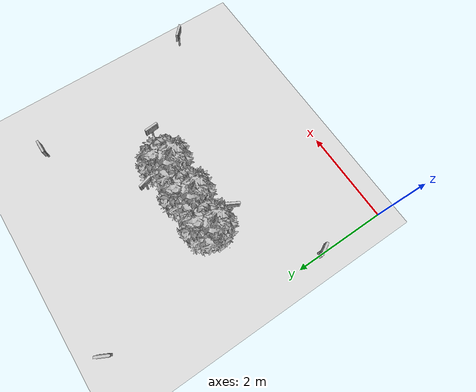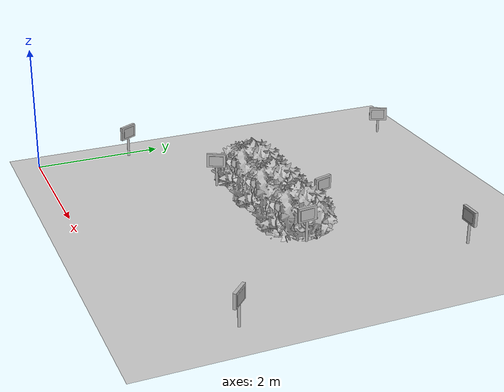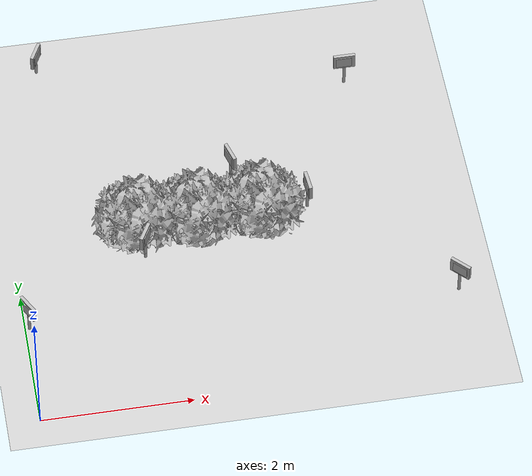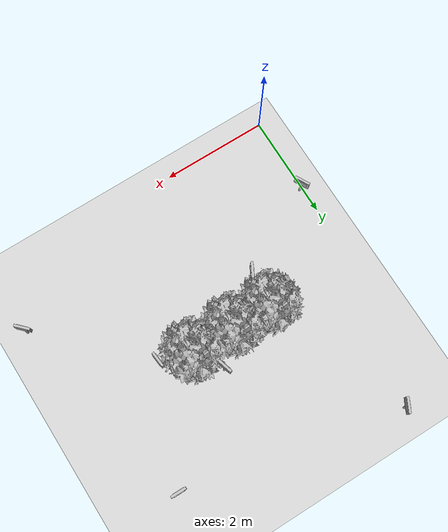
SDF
<sdf version="1.7">
 <world name="default">
  <model name="ground_plane">
   <static>1</static>
   <link name="link">
    <collision name="collision">
     <geometry><plane><normal>0 0 1</normal><size>100 100</size></plane></geometry>
     <surface><friction><ode><mu>100</mu><mu2>50</mu2></ode></friction></surface>
    </collision>
    <visual name="visual">
     <cast_shadows>0</cast_shadows>
     <geometry><plane><normal>0 0 1</normal><size>100 100</size></plane></geometry>
     <material>
      <script><uri>file://media/materials/scripts/gazebo.material</uri><name>Gazebo/Grey</name></script>
     </material>
    </visual>
   </link>
  </model>
  <model name="abbfre_8">
   <link name="link_0">
    <inertial>
     <mass>1</mass>
     <inertia>
      <ixx>0.166667</ixx>
      <ixy>0</ixy>
      <ixz>0</ixz>
      <iyy>0.166667</iyy>
      <iyz>0</iyz>
      <izz>0.166667</izz>
     </inertia>
    </inertial>
    <pose>0 0 -0 1.60917 -0 0</pose>
    <visual name="visual">
     <geometry><mesh><uri>model://abbfre/meshes/arbufres.obj</uri><scale>1 1 1</scale></mesh></geometry>
    </visual>
    <collision name="collision">
     <geometry><mesh><uri>model://abbfre/meshes/arbufres.obj</uri><scale>1 1 1</scale></mesh></geometry>
     <surface>
      <friction>
       <ode><mu>1</mu><mu2>1</mu2><fdir1>0 0 0</fdir1><slip1>0</slip1><slip2>0</slip2></ode>
       <torsional>
        <coefficient>1</coefficient>
        <patch_radius>0</patch_radius>
        <surface_radius>0</surface_radius>
        <use_patch_radius>1</use_patch_radius>
        <ode><slip>0</slip></ode>
       </torsional>
      </friction>
      <bounce><restitution_coefficient>0</restitution_coefficient><threshold>1e+06</threshold></bounce>
      <contact>
       <collide_without_contact>0</collide_without_contact>
       <collide_without_contact_bitmask>1</collide_without_contact_bitmask>
       <collide_bitmask>1</collide_bitmask>
       <ode>
        <soft_cfm>0</soft_cfm>
        <soft_erp>0.2</soft_erp>
        <kp>1e+13</kp>
        <kd>1</kd>
        <max_vel>0.01</max_vel>
        <min_depth>0</min_depth>
       </ode>
       <bullet>
        <split_impulse>1</split_impulse>
        <split_impulse_penetration_threshold>-0.01</split_impulse_penetration_threshold>
        <soft_cfm>0</soft_cfm>
        <soft_erp>0.2</soft_erp>
        <kp>1e+13</kp>
        <kd>1</kd>
       </bullet>
      </contact>
     </surface>
    </collision>
   </link>
   <static>1</static>
   <pose>2.54008 3.13594 0 0 -0 0</pose>
  </model>
  <model name="letrero_riego_2">
   <link name="link_0">
    <inertial>
     <mass>0.0543151</mass>
     <inertia>
      <ixx>4.90351e-06</ixx>
      <ixy>0</ixy>
      <ixz>0</ixz>
      <iyy>4.90351e-06</iyy>
      <iyz>0</iyz>
      <izz>1.12837e-07</izz>
     </inertia>
    </inertial>
    <pose>0.002515 0.005109 0.153562 0 -0 0</pose>
    <visual name="visual">
     <geometry><cylinder><radius>0.0203836</radius><length>0.327243</length></cylinder></geometry>
     <material>
      <lighting>1</lighting>
      <script>
       <uri>model://letrero_riego/madera/scripts</uri>
       <uri>model://letrero_riego/madera/textures</uri>
       <name>textur/madera</name>
      </script>
      <shader type="pixel"/>
      <emissive>0 0 0 1</emissive>
     </material>
    </visual>
    <collision name="collision">
     <geometry><cylinder><radius>0.020384</radius><length>0.327243</length></cylinder></geometry>
     <surface>
      <friction>
       <ode><mu>1</mu><mu2>1</mu2><fdir1>0 0 0</fdir1><slip1>0</slip1><slip2>0</slip2></ode>
       <torsional>
        <coefficient>1</coefficient>
        <patch_radius>0</patch_radius>
        <surface_radius>0</surface_radius>
        <use_patch_radius>1</use_patch_radius>
        <ode><slip>0</slip></ode>
       </torsional>
      </friction>
      <bounce><restitution_coefficient>0</restitution_coefficient><threshold>1e+06</threshold></bounce>
      <contact>
       <collide_without_contact>0</collide_without_contact>
       <collide_without_contact_bitmask>1</collide_without_contact_bitmask>
       <collide_bitmask>1</collide_bitmask>
       <ode>
        <soft_cfm>0</soft_cfm>
        <soft_erp>0.2</soft_erp>
        <kp>1e+13</kp>
        <kd>1</kd>
        <max_vel>0.01</max_vel>
        <min_depth>0</min_depth>
       </ode>
       <bullet>
        <split_impulse>1</split_impulse>
        <split_impulse_penetration_threshold>-0.01</split_impulse_penetration_threshold>
        <soft_cfm>0</soft_cfm>
        <soft_erp>0.2</soft_erp>
        <kp>1e+13</kp>
        <kd>1</kd>
       </bullet>
      </contact>
     </surface>
    </collision>
   </link>
   <link name="link_1">
    <inertial>
     <mass>0.00299633</mass>
     <inertia>
      <ixx>1.27855e-05</ixx>
      <ixy>0</ixy>
      <ixz>0</ixz>
      <iyy>3.42923e-05</iyy>
      <iyz>0</iyz>
      <izz>2.25402e-05</izz>
     </inertia>
    </inertial>
    <pose>-0.001542 0.002452 0.422031 0 -0 0</pose>
    <visual name="visual">
     <geometry><box><size>0.296988 0.04549 0.221665</size></box></geometry>
     <material>
      <lighting>1</lighting>
      <script>
       <uri>model://letrero_riego/madera/scripts</uri>
       <uri>model://letrero_riego/madera/textures</uri>
       <name>textur/madera</name>
      </script>
      <shader type="pixel"/>
      <emissive>0 0 0 1</emissive>
     </material>
    </visual>
    <collision name="collision">
     <geometry><box><size>0.296988 0.04549 0.221665</size></box></geometry>
     <surface>
      <friction>
       <ode><mu>1</mu><mu2>1</mu2><fdir1>0 0 0</fdir1><slip1>0</slip1><slip2>0</slip2></ode>
       <torsional>
        <coefficient>1</coefficient>
        <patch_radius>0</patch_radius>
        <surface_radius>0</surface_radius>
        <use_patch_radius>1</use_patch_radius>
        <ode><slip>0</slip></ode>
       </torsional>
      </friction>
      <bounce><restitution_coefficient>0</restitution_coefficient><threshold>1e+06</threshold></bounce>
      <contact>
       <collide_without_contact>0</collide_without_contact>
       <collide_without_contact_bitmask>1</collide_without_contact_bitmask>
       <collide_bitmask>1</collide_bitmask>
       <ode>
        <soft_cfm>0</soft_cfm>
        <soft_erp>0.2</soft_erp>
        <kp>1e+13</kp>
        <kd>1</kd>
        <max_vel>0.01</max_vel>
        <min_depth>0</min_depth>
       </ode>
       <bullet>
        <split_impulse>1</split_impulse>
        <split_impulse_penetration_threshold>-0.01</split_impulse_penetration_threshold>
        <soft_cfm>0</soft_cfm>
        <soft_erp>0.2</soft_erp>
        <kp>1e+13</kp>
        <kd>1</kd>
       </bullet>
      </contact>
     </surface>
    </collision>
   </link>
   <link name="link_2">
    <inertial>
     <mass>0.00173577</mass>
     <inertia>
      <ixx>4.23206e-06</ixx>
      <ixy>0</ixy>
      <ixz>0</ixz>
      <iyy>1.03921e-05</iyy>
      <iyz>0</iyz>
      <izz>7.37287e-06</izz>
     </inertia>
    </inertial>
    <pose>-0.010225 0.002657 0.421501 0 -0 0</pose>
    <visual name="visual">
     <geometry><box><size>0.216284 0.064749 0.15832</size></box></geometry>
     <material>
      <lighting>1</lighting>
      <script>
       <uri>model://letrero_riego/materials/scripts</uri>
       <uri>model://letrero_riego/materials/textures</uri>
       <name>textur/riego</name>
      </script>
      <shader type="pixel"/>
      <emissive>0 0 0 1</emissive>
     </material>
    </visual>
    <collision name="collision">
     <geometry><box><size>0.216284 0.064749 0.15832</size></box></geometry>
     <surface>
      <friction>
       <ode><mu>1</mu><mu2>1</mu2><fdir1>0 0 0</fdir1><slip1>0</slip1><slip2>0</slip2></ode>
       <torsional>
        <coefficient>1</coefficient>
        <patch_radius>0</patch_radius>
        <surface_radius>0</surface_radius>
        <use_patch_radius>1</use_patch_radius>
        <ode><slip>0</slip></ode>
       </torsional>
      </friction>
      <bounce><restitution_coefficient>0</restitution_coefficient><threshold>1e+06</threshold></bounce>
      <contact>
       <collide_without_contact>0</collide_without_contact>
       <collide_without_contact_bitmask>1</collide_without_contact_bitmask>
       <collide_bitmask>1</collide_bitmask>
       <ode>
        <soft_cfm>0</soft_cfm>
        <soft_erp>0.2</soft_erp>
        <kp>1e+13</kp>
        <kd>1</kd>
        <max_vel>0.01</max_vel>
        <min_depth>0</min_depth>
       </ode>
       <bullet>
        <split_impulse>1</split_impulse>
        <split_impulse_penetration_threshold>-0.01</split_impulse_penetration_threshold>
        <soft_cfm>0</soft_cfm>
        <soft_erp>0.2</soft_erp>
        <kp>1e+13</kp>
        <kd>1</kd>
       </bullet>
      </contact>
     </surface>
    </collision>
   </link>
   <joint name="link_0_JOINT_1" type="fixed">
    <parent>link_0</parent>
    <child>link_1</child>
    <physics>
     <ode><limit><cfm>0</cfm><erp>0.2</erp></limit><suspension><cfm>0</cfm><erp>0.2</erp></suspension></ode>
    </physics>
   </joint>
   <joint name="link_0_JOINT_2" type="fixed">
    <parent>link_0</parent>
    <child>link_2</child>
    <physics>
     <ode><limit><cfm>0</cfm><erp>0.2</erp></limit><suspension><cfm>0</cfm><erp>0.2</erp></suspension></ode>
    </physics>
   </joint>
   <static>1</static>
   <pose>5.69569 1.18445 0.061424 0 -0 2.34456</pose>
  </model>
  <model name="letrero_fresa_5">
   <link name="link_0">
    <inertial>
     <mass>0.00543151</mass>
     <inertia>
      <ixx>4.90351e-06</ixx>
      <ixy>0</ixy>
      <ixz>0</ixz>
      <iyy>4.90351e-06</iyy>
      <iyz>0</iyz>
      <izz>1.12837e-07</izz>
     </inertia>
    </inertial>
    <pose>0.002372 -0.000902 -0.178803 0 -0 0</pose>
    <visual name="visual">
     <geometry><cylinder><radius>0.0203836</radius><length>0.327243</length></cylinder></geometry>
     <material>
      <lighting>1</lighting>
      <script>
       <uri>model://letrero_fresa/madera/scripts</uri>
       <uri>model://letrero_fresa/madera/textures</uri>
       <name>textur/madera</name>
      </script>
      <shader type="pixel"/>
      <emissive>0 0 0 1</emissive>
     </material>
    </visual>
    <collision name="collision">
     <geometry><cylinder><radius>0.020384</radius><length>0.327243</length></cylinder></geometry>
     <surface>
      <friction>
       <ode><mu>1</mu><mu2>1</mu2><fdir1>0 0 0</fdir1><slip1>0</slip1><slip2>0</slip2></ode>
       <torsional>
        <coefficient>1</coefficient>
        <patch_radius>0</patch_radius>
        <surface_radius>0</surface_radius>
        <use_patch_radius>1</use_patch_radius>
        <ode><slip>0</slip></ode>
       </torsional>
      </friction>
      <bounce><restitution_coefficient>0</restitution_coefficient><threshold>1e+06</threshold></bounce>
      <contact>
       <collide_without_contact>0</collide_without_contact>
       <collide_without_contact_bitmask>1</collide_without_contact_bitmask>
       <collide_bitmask>1</collide_bitmask>
       <ode>
        <soft_cfm>0</soft_cfm>
        <soft_erp>0.2</soft_erp>
        <kp>1e+13</kp>
        <kd>1</kd>
        <max_vel>0.01</max_vel>
        <min_depth>0</min_depth>
       </ode>
       <bullet>
        <split_impulse>1</split_impulse>
        <split_impulse_penetration_threshold>-0.01</split_impulse_penetration_threshold>
        <soft_cfm>0</soft_cfm>
        <soft_erp>0.2</soft_erp>
        <kp>1e+13</kp>
        <kd>1</kd>
       </bullet>
      </contact>
     </surface>
    </collision>
   </link>
   <link name="link_1">
    <inertial>
     <mass>0.00299633</mass>
     <inertia>
      <ixx>1.27855e-05</ixx>
      <ixy>0</ixy>
      <ixz>0</ixz>
      <iyy>3.42923e-05</iyy>
      <iyz>0</iyz>
      <izz>2.25402e-05</izz>
     </inertia>
    </inertial>
    <pose>-0.001685 -0.003559 0.089666 0 -0 0</pose>
    <visual name="visual">
     <geometry><box><size>0.296988 0.04549 0.221665</size></box></geometry>
     <material>
      <lighting>1</lighting>
      <script>
       <uri>model://letrero_fresa/madera/scripts</uri>
       <uri>model://letrero_fresa/madera/textures</uri>
       <name>textur/madera</name>
      </script>
      <shader type="pixel"/>
      <emissive>0 0 0 1</emissive>
     </material>
    </visual>
    <collision name="collision">
     <geometry><box><size>0.296988 0.04549 0.221665</size></box></geometry>
     <surface>
      <friction>
       <ode><mu>1</mu><mu2>1</mu2><fdir1>0 0 0</fdir1><slip1>0</slip1><slip2>0</slip2></ode>
       <torsional>
        <coefficient>1</coefficient>
        <patch_radius>0</patch_radius>
        <surface_radius>0</surface_radius>
        <use_patch_radius>1</use_patch_radius>
        <ode><slip>0</slip></ode>
       </torsional>
      </friction>
      <bounce><restitution_coefficient>0</restitution_coefficient><threshold>1e+06</threshold></bounce>
      <contact>
       <collide_without_contact>0</collide_without_contact>
       <collide_without_contact_bitmask>1</collide_without_contact_bitmask>
       <collide_bitmask>1</collide_bitmask>
       <ode>
        <soft_cfm>0</soft_cfm>
        <soft_erp>0.2</soft_erp>
        <kp>1e+13</kp>
        <kd>1</kd>
        <max_vel>0.01</max_vel>
        <min_depth>0</min_depth>
       </ode>
       <bullet>
        <split_impulse>1</split_impulse>
        <split_impulse_penetration_threshold>-0.01</split_impulse_penetration_threshold>
        <soft_cfm>0</soft_cfm>
        <soft_erp>0.2</soft_erp>
        <kp>1e+13</kp>
        <kd>1</kd>
       </bullet>
      </contact>
     </surface>
    </collision>
   </link>
   <link name="link_2">
    <inertial>
     <mass>0.00219695</mass>
     <inertia>
      <ixx>5.34209e-06</ixx>
      <ixy>0</ixy>
      <ixz>0</ixz>
      <iyy>1.31531e-05</iyy>
      <iyz>0</iyz>
      <izz>9.31738e-06</izz>
     </inertia>
    </inertial>
    <pose>-0.001275 -0.005928 0.089136 0 -0 0</pose>
    <visual name="visual">
     <geometry><box><size>0.216284 0.06414 0.15832</size></box></geometry>
     <material>
      <lighting>1</lighting>
      <script>
       <uri>model://letrero_fresa/materials/scripts</uri>
       <uri>model://letrero_fresa/materials/textures</uri>
       <name>textur/difre</name>
      </script>
      <shader type="pixel"/>
      <emissive>0 0 0 1</emissive>
     </material>
    </visual>
    <collision name="collision">
     <geometry><box><size>0.216284 0.06414 0.15832</size></box></geometry>
     <surface>
      <friction>
       <ode><mu>1</mu><mu2>1</mu2><fdir1>0 0 0</fdir1><slip1>0</slip1><slip2>0</slip2></ode>
       <torsional>
        <coefficient>1</coefficient>
        <patch_radius>0</patch_radius>
        <surface_radius>0</surface_radius>
        <use_patch_radius>1</use_patch_radius>
        <ode><slip>0</slip></ode>
       </torsional>
      </friction>
      <bounce><restitution_coefficient>0</restitution_coefficient><threshold>1e+06</threshold></bounce>
      <contact>
       <collide_without_contact>0</collide_without_contact>
       <collide_without_contact_bitmask>1</collide_without_contact_bitmask>
       <collide_bitmask>1</collide_bitmask>
       <ode>
        <soft_cfm>0</soft_cfm>
        <soft_erp>0.2</soft_erp>
        <kp>1e+13</kp>
        <kd>1</kd>
        <max_vel>0.01</max_vel>
        <min_depth>0</min_depth>
       </ode>
       <bullet>
        <split_impulse>1</split_impulse>
        <split_impulse_penetration_threshold>-0.01</split_impulse_penetration_threshold>
        <soft_cfm>0</soft_cfm>
        <soft_erp>0.2</soft_erp>
        <kp>1e+13</kp>
        <kd>1</kd>
       </bullet>
      </contact>
     </surface>
    </collision>
   </link>
   <joint name="link_0_JOINT_1" type="fixed">
    <parent>link_0</parent>
    <child>link_1</child>
    <physics>
     <ode><limit><cfm>0</cfm><erp>0.2</erp></limit><suspension><cfm>0</cfm><erp>0.2</erp></suspension></ode>
    </physics>
   </joint>
   <joint name="link_0_JOINT_2" type="fixed">
    <parent>link_0</parent>
    <child>link_2</child>
    <physics>
     <ode><limit><cfm>0</cfm><erp>0.2</erp></limit><suspension><cfm>0</cfm><erp>0.2</erp></suspension></ode>
    </physics>
   </joint>
   <static>1</static>
   <pose>0.058788 1.50536 0.323037 0 0 -1.07829</pose>
  </model>
  <model name="letrero_fresa_6">
   <link name="link_0">
    <inertial>
     <mass>0.00543151</mass>
     <inertia>
      <ixx>4.90351e-06</ixx>
      <ixy>0</ixy>
      <ixz>0</ixz>
      <iyy>4.90351e-06</iyy>
      <iyz>0</iyz>
      <izz>1.12837e-07</izz>
     </inertia>
    </inertial>
    <pose>0.002372 -0.000902 -0.178803 0 -0 0</pose>
    <visual name="visual">
     <geometry><cylinder><radius>0.0203836</radius><length>0.327243</length></cylinder></geometry>
     <material>
      <lighting>1</lighting>
      <script>
       <uri>model://letrero_fresa/madera/scripts</uri>
       <uri>model://letrero_fresa/madera/textures</uri>
       <name>textur/madera</name>
      </script>
      <shader type="pixel"/>
      <emissive>0 0 0 1</emissive>
     </material>
    </visual>
    <collision name="collision">
     <geometry><cylinder><radius>0.020384</radius><length>0.327243</length></cylinder></geometry>
     <surface>
      <friction>
       <ode><mu>1</mu><mu2>1</mu2><fdir1>0 0 0</fdir1><slip1>0</slip1><slip2>0</slip2></ode>
       <torsional>
        <coefficient>1</coefficient>
        <patch_radius>0</patch_radius>
        <surface_radius>0</surface_radius>
        <use_patch_radius>1</use_patch_radius>
        <ode><slip>0</slip></ode>
       </torsional>
      </friction>
      <bounce><restitution_coefficient>0</restitution_coefficient><threshold>1e+06</threshold></bounce>
      <contact>
       <collide_without_contact>0</collide_without_contact>
       <collide_without_contact_bitmask>1</collide_without_contact_bitmask>
       <collide_bitmask>1</collide_bitmask>
       <ode>
        <soft_cfm>0</soft_cfm>
        <soft_erp>0.2</soft_erp>
        <kp>1e+13</kp>
        <kd>1</kd>
        <max_vel>0.01</max_vel>
        <min_depth>0</min_depth>
       </ode>
       <bullet>
        <split_impulse>1</split_impulse>
        <split_impulse_penetration_threshold>-0.01</split_impulse_penetration_threshold>
        <soft_cfm>0</soft_cfm>
        <soft_erp>0.2</soft_erp>
        <kp>1e+13</kp>
        <kd>1</kd>
       </bullet>
      </contact>
     </surface>
    </collision>
   </link>
   <link name="link_1">
    <inertial>
     <mass>0.00299633</mass>
     <inertia>
      <ixx>1.27855e-05</ixx>
      <ixy>0</ixy>
      <ixz>0</ixz>
      <iyy>3.42923e-05</iyy>
      <iyz>0</iyz>
      <izz>2.25402e-05</izz>
     </inertia>
    </inertial>
    <pose>-0.001685 -0.003559 0.089666 0 -0 0</pose>
    <visual name="visual">
     <geometry><box><size>0.296988 0.04549 0.221665</size></box></geometry>
     <material>
      <lighting>1</lighting>
      <script>
       <uri>model://letrero_fresa/madera/scripts</uri>
       <uri>model://letrero_fresa/madera/textures</uri>
       <name>textur/madera</name>
      </script>
      <shader type="pixel"/>
      <emissive>0 0 0 1</emissive>
     </material>
    </visual>
    <collision name="collision">
     <geometry><box><size>0.296988 0.04549 0.221665</size></box></geometry>
     <surface>
      <friction>
       <ode><mu>1</mu><mu2>1</mu2><fdir1>0 0 0</fdir1><slip1>0</slip1><slip2>0</slip2></ode>
       <torsional>
        <coefficient>1</coefficient>
        <patch_radius>0</patch_radius>
        <surface_radius>0</surface_radius>
        <use_patch_radius>1</use_patch_radius>
        <ode><slip>0</slip></ode>
       </torsional>
      </friction>
      <bounce><restitution_coefficient>0</restitution_coefficient><threshold>1e+06</threshold></bounce>
      <contact>
       <collide_without_contact>0</collide_without_contact>
       <collide_without_contact_bitmask>1</collide_without_contact_bitmask>
       <collide_bitmask>1</collide_bitmask>
       <ode>
        <soft_cfm>0</soft_cfm>
        <soft_erp>0.2</soft_erp>
        <kp>1e+13</kp>
        <kd>1</kd>
        <max_vel>0.01</max_vel>
        <min_depth>0</min_depth>
       </ode>
       <bullet>
        <split_impulse>1</split_impulse>
        <split_impulse_penetration_threshold>-0.01</split_impulse_penetration_threshold>
        <soft_cfm>0</soft_cfm>
        <soft_erp>0.2</soft_erp>
        <kp>1e+13</kp>
        <kd>1</kd>
       </bullet>
      </contact>
     </surface>
    </collision>
   </link>
   <link name="link_2">
    <inertial>
     <mass>0.00219695</mass>
     <inertia>
      <ixx>5.34209e-06</ixx>
      <ixy>0</ixy>
      <ixz>0</ixz>
      <iyy>1.31531e-05</iyy>
      <iyz>0</iyz>
      <izz>9.31738e-06</izz>
     </inertia>
    </inertial>
    <pose>-0.001275 -0.005928 0.089136 0 -0 0</pose>
    <visual name="visual">
     <geometry><box><size>0.216284 0.06414 0.15832</size></box></geometry>
     <material>
      <lighting>1</lighting>
      <script>
       <uri>model://letrero_fresa/materials/scripts</uri>
       <uri>model://letrero_fresa/materials/textures</uri>
       <name>textur/difre</name>
      </script>
      <shader type="pixel"/>
      <emissive>0 0 0 1</emissive>
     </material>
    </visual>
    <collision name="collision">
     <geometry><box><size>0.216284 0.06414 0.15832</size></box></geometry>
     <surface>
      <friction>
       <ode><mu>1</mu><mu2>1</mu2><fdir1>0 0 0</fdir1><slip1>0</slip1><slip2>0</slip2></ode>
       <torsional>
        <coefficient>1</coefficient>
        <patch_radius>0</patch_radius>
        <surface_radius>0</surface_radius>
        <use_patch_radius>1</use_patch_radius>
        <ode><slip>0</slip></ode>
       </torsional>
      </friction>
      <bounce><restitution_coefficient>0</restitution_coefficient><threshold>1e+06</threshold></bounce>
      <contact>
       <collide_without_contact>0</collide_without_contact>
       <collide_without_contact_bitmask>1</collide_without_contact_bitmask>
       <collide_bitmask>1</collide_bitmask>
       <ode>
        <soft_cfm>0</soft_cfm>
        <soft_erp>0.2</soft_erp>
        <kp>1e+13</kp>
        <kd>1</kd>
        <max_vel>0.01</max_vel>
        <min_depth>0</min_depth>
       </ode>
       <bullet>
        <split_impulse>1</split_impulse>
        <split_impulse_penetration_threshold>-0.01</split_impulse_penetration_threshold>
        <soft_cfm>0</soft_cfm>
        <soft_erp>0.2</soft_erp>
        <kp>1e+13</kp>
        <kd>1</kd>
       </bullet>
      </contact>
     </surface>
    </collision>
   </link>
   <joint name="link_0_JOINT_1" type="fixed">
    <parent>link_0</parent>
    <child>link_1</child>
    <physics>
     <ode><limit><cfm>0</cfm><erp>0.2</erp></limit><suspension><cfm>0</cfm><erp>0.2</erp></suspension></ode>
    </physics>
   </joint>
   <joint name="link_0_JOINT_2" type="fixed">
    <parent>link_0</parent>
    <child>link_2</child>
    <physics>
     <ode><limit><cfm>0</cfm><erp>0.2</erp></limit><suspension><cfm>0</cfm><erp>0.2</erp></suspension></ode>
    </physics>
   </joint>
   <static>1</static>
   <pose>1.72652 2.43587 0.332854 0 -0 1.07532</pose>
  </model>
  <model name="letrero_riego_7">
   <link name="link_0">
    <inertial>
     <mass>0.0543151</mass>
     <inertia>
      <ixx>4.90351e-06</ixx>
      <ixy>0</ixy>
      <ixz>0</ixz>
      <iyy>4.90351e-06</iyy>
      <iyz>0</iyz>
      <izz>1.12837e-07</izz>
     </inertia>
    </inertial>
    <pose>0.002515 0.005109 0.153562 0 -0 0</pose>
    <visual name="visual">
     <geometry><cylinder><radius>0.0203836</radius><length>0.327243</length></cylinder></geometry>
     <material>
      <lighting>1</lighting>
      <script>
       <uri>model://letrero_riego/madera/scripts</uri>
       <uri>model://letrero_riego/madera/textures</uri>
       <name>textur/madera</name>
      </script>
      <shader type="pixel"/>
      <emissive>0 0 0 1</emissive>
     </material>
    </visual>
    <collision name="collision">
     <geometry><cylinder><radius>0.020384</radius><length>0.327243</length></cylinder></geometry>
     <surface>
      <friction>
       <ode><mu>1</mu><mu2>1</mu2><fdir1>0 0 0</fdir1><slip1>0</slip1><slip2>0</slip2></ode>
       <torsional>
        <coefficient>1</coefficient>
        <patch_radius>0</patch_radius>
        <surface_radius>0</surface_radius>
        <use_patch_radius>1</use_patch_radius>
        <ode><slip>0</slip></ode>
       </torsional>
      </friction>
      <bounce><restitution_coefficient>0</restitution_coefficient><threshold>1e+06</threshold></bounce>
      <contact>
       <collide_without_contact>0</collide_without_contact>
       <collide_without_contact_bitmask>1</collide_without_contact_bitmask>
       <collide_bitmask>1</collide_bitmask>
       <ode>
        <soft_cfm>0</soft_cfm>
        <soft_erp>0.2</soft_erp>
        <kp>1e+13</kp>
        <kd>1</kd>
        <max_vel>0.01</max_vel>
        <min_depth>0</min_depth>
       </ode>
       <bullet>
        <split_impulse>1</split_impulse>
        <split_impulse_penetration_threshold>-0.01</split_impulse_penetration_threshold>
        <soft_cfm>0</soft_cfm>
        <soft_erp>0.2</soft_erp>
        <kp>1e+13</kp>
        <kd>1</kd>
       </bullet>
      </contact>
     </surface>
    </collision>
   </link>
   <link name="link_1">
    <inertial>
     <mass>0.00299633</mass>
     <inertia>
      <ixx>1.27855e-05</ixx>
      <ixy>0</ixy>
      <ixz>0</ixz>
      <iyy>3.42923e-05</iyy>
      <iyz>0</iyz>
      <izz>2.25402e-05</izz>
     </inertia>
    </inertial>
    <pose>-0.001542 0.002452 0.422031 0 -0 0</pose>
    <visual name="visual">
     <geometry><box><size>0.296988 0.04549 0.221665</size></box></geometry>
     <material>
      <lighting>1</lighting>
      <script>
       <uri>model://letrero_riego/madera/scripts</uri>
       <uri>model://letrero_riego/madera/textures</uri>
       <name>textur/madera</name>
      </script>
      <shader type="pixel"/>
      <emissive>0 0 0 1</emissive>
     </material>
    </visual>
    <collision name="collision">
     <geometry><box><size>0.296988 0.04549 0.221665</size></box></geometry>
     <surface>
      <friction>
       <ode><mu>1</mu><mu2>1</mu2><fdir1>0 0 0</fdir1><slip1>0</slip1><slip2>0</slip2></ode>
       <torsional>
        <coefficient>1</coefficient>
        <patch_radius>0</patch_radius>
        <surface_radius>0</surface_radius>
        <use_patch_radius>1</use_patch_radius>
        <ode><slip>0</slip></ode>
       </torsional>
      </friction>
      <bounce><restitution_coefficient>0</restitution_coefficient><threshold>1e+06</threshold></bounce>
      <contact>
       <collide_without_contact>0</collide_without_contact>
       <collide_without_contact_bitmask>1</collide_without_contact_bitmask>
       <collide_bitmask>1</collide_bitmask>
       <ode>
        <soft_cfm>0</soft_cfm>
        <soft_erp>0.2</soft_erp>
        <kp>1e+13</kp>
        <kd>1</kd>
        <max_vel>0.01</max_vel>
        <min_depth>0</min_depth>
       </ode>
       <bullet>
        <split_impulse>1</split_impulse>
        <split_impulse_penetration_threshold>-0.01</split_impulse_penetration_threshold>
        <soft_cfm>0</soft_cfm>
        <soft_erp>0.2</soft_erp>
        <kp>1e+13</kp>
        <kd>1</kd>
       </bullet>
      </contact>
     </surface>
    </collision>
   </link>
   <link name="link_2">
    <inertial>
     <mass>0.00173577</mass>
     <inertia>
      <ixx>4.23206e-06</ixx>
      <ixy>0</ixy>
      <ixz>0</ixz>
      <iyy>1.03921e-05</iyy>
      <iyz>0</iyz>
      <izz>7.37287e-06</izz>
     </inertia>
    </inertial>
    <pose>-0.010225 0.002657 0.421501 0 -0 0</pose>
    <visual name="visual">
     <geometry><box><size>0.216284 0.064749 0.15832</size></box></geometry>
     <material>
      <lighting>1</lighting>
      <script>
       <uri>model://letrero_riego/materials/scripts</uri>
       <uri>model://letrero_riego/materials/textures</uri>
       <name>textur/riego</name>
      </script>
      <shader type="pixel"/>
      <emissive>0 0 0 1</emissive>
     </material>
    </visual>
    <collision name="collision">
     <geometry><box><size>0.216284 0.064749 0.15832</size></box></geometry>
     <surface>
      <friction>
       <ode><mu>1</mu><mu2>1</mu2><fdir1>0 0 0</fdir1><slip1>0</slip1><slip2>0</slip2></ode>
       <torsional>
        <coefficient>1</coefficient>
        <patch_radius>0</patch_radius>
        <surface_radius>0</surface_radius>
        <use_patch_radius>1</use_patch_radius>
        <ode><slip>0</slip></ode>
       </torsional>
      </friction>
      <bounce><restitution_coefficient>0</restitution_coefficient><threshold>1e+06</threshold></bounce>
      <contact>
       <collide_without_contact>0</collide_without_contact>
       <collide_without_contact_bitmask>1</collide_without_contact_bitmask>
       <collide_bitmask>1</collide_bitmask>
       <ode>
        <soft_cfm>0</soft_cfm>
        <soft_erp>0.2</soft_erp>
        <kp>1e+13</kp>
        <kd>1</kd>
        <max_vel>0.01</max_vel>
        <min_depth>0</min_depth>
       </ode>
       <bullet>
        <split_impulse>1</split_impulse>
        <split_impulse_penetration_threshold>-0.01</split_impulse_penetration_threshold>
        <soft_cfm>0</soft_cfm>
        <soft_erp>0.2</soft_erp>
        <kp>1e+13</kp>
        <kd>1</kd>
       </bullet>
      </contact>
     </surface>
    </collision>
   </link>
   <joint name="link_0_JOINT_1" type="fixed">
    <parent>link_0</parent>
    <child>link_1</child>
    <physics>
     <ode><limit><cfm>0</cfm><erp>0.2</erp></limit><suspension><cfm>0</cfm><erp>0.2</erp></suspension></ode>
    </physics>
   </joint>
   <joint name="link_0_JOINT_2" type="fixed">
    <parent>link_0</parent>
    <child>link_2</child>
    <physics>
     <ode><limit><cfm>0</cfm><erp>0.2</erp></limit><suspension><cfm>0</cfm><erp>0.2</erp></suspension></ode>
    </physics>
   </joint>
   <static>1</static>
   <pose>3.98619 2.91601 0.028794 0 -0 1.65684</pose>
  </model>
  <model name="letrero_fresa_10">
   <link name="link_0">
    <inertial>
     <mass>0.00543151</mass>
     <inertia>
      <ixx>4.90351e-06</ixx>
      <ixy>0</ixy>
      <ixz>0</ixz>
      <iyy>4.90351e-06</iyy>
      <iyz>0</iyz>
      <izz>1.12837e-07</izz>
     </inertia>
    </inertial>
    <pose>0.002372 -0.000902 -0.178803 0 -0 0</pose>
    <visual name="visual">
     <geometry><cylinder><radius>0.0203836</radius><length>0.327243</length></cylinder></geometry>
     <material>
      <lighting>1</lighting>
      <script>
       <uri>model://letrero_fresa/madera/scripts</uri>
       <uri>model://letrero_fresa/madera/textures</uri>
       <name>textur/madera</name>
      </script>
      <shader type="pixel"/>
      <emissive>0 0 0 1</emissive>
     </material>
    </visual>
    <collision name="collision">
     <geometry><cylinder><radius>0.020384</radius><length>0.327243</length></cylinder></geometry>
     <surface>
      <friction>
       <ode><mu>1</mu><mu2>1</mu2><fdir1>0 0 0</fdir1><slip1>0</slip1><slip2>0</slip2></ode>
       <torsional>
        <coefficient>1</coefficient>
        <patch_radius>0</patch_radius>
        <surface_radius>0</surface_radius>
        <use_patch_radius>1</use_patch_radius>
        <ode><slip>0</slip></ode>
       </torsional>
      </friction>
      <bounce><restitution_coefficient>0</restitution_coefficient><threshold>1e+06</threshold></bounce>
      <contact>
       <collide_without_contact>0</collide_without_contact>
       <collide_without_contact_bitmask>1</collide_without_contact_bitmask>
       <collide_bitmask>1</collide_bitmask>
       <ode>
        <soft_cfm>0</soft_cfm>
        <soft_erp>0.2</soft_erp>
        <kp>1e+13</kp>
        <kd>1</kd>
        <max_vel>0.01</max_vel>
        <min_depth>0</min_depth>
       </ode>
       <bullet>
        <split_impulse>1</split_impulse>
        <split_impulse_penetration_threshold>-0.01</split_impulse_penetration_threshold>
        <soft_cfm>0</soft_cfm>
        <soft_erp>0.2</soft_erp>
        <kp>1e+13</kp>
        <kd>1</kd>
       </bullet>
      </contact>
     </surface>
    </collision>
   </link>
   <link name="link_1">
    <inertial>
     <mass>0.00299633</mass>
     <inertia>
      <ixx>1.27855e-05</ixx>
      <ixy>0</ixy>
      <ixz>0</ixz>
      <iyy>3.42923e-05</iyy>
      <iyz>0</iyz>
      <izz>2.25402e-05</izz>
     </inertia>
    </inertial>
    <pose>-0.001685 -0.003559 0.089666 0 -0 0</pose>
    <visual name="visual">
     <geometry><box><size>0.296988 0.04549 0.221665</size></box></geometry>
     <material>
      <lighting>1</lighting>
      <script>
       <uri>model://letrero_fresa/madera/scripts</uri>
       <uri>model://letrero_fresa/madera/textures</uri>
       <name>textur/madera</name>
      </script>
      <shader type="pixel"/>
      <emissive>0 0 0 1</emissive>
     </material>
    </visual>
    <collision name="collision">
     <geometry><box><size>0.296988 0.04549 0.221665</size></box></geometry>
     <surface>
      <friction>
       <ode><mu>1</mu><mu2>1</mu2><fdir1>0 0 0</fdir1><slip1>0</slip1><slip2>0</slip2></ode>
       <torsional>
        <coefficient>1</coefficient>
        <patch_radius>0</patch_radius>
        <surface_radius>0</surface_radius>
        <use_patch_radius>1</use_patch_radius>
        <ode><slip>0</slip></ode>
       </torsional>
      </friction>
      <bounce><restitution_coefficient>0</restitution_coefficient><threshold>1e+06</threshold></bounce>
      <contact>
       <collide_without_contact>0</collide_without_contact>
       <collide_without_contact_bitmask>1</collide_without_contact_bitmask>
       <collide_bitmask>1</collide_bitmask>
       <ode>
        <soft_cfm>0</soft_cfm>
        <soft_erp>0.2</soft_erp>
        <kp>1e+13</kp>
        <kd>1</kd>
        <max_vel>0.01</max_vel>
        <min_depth>0</min_depth>
       </ode>
       <bullet>
        <split_impulse>1</split_impulse>
        <split_impulse_penetration_threshold>-0.01</split_impulse_penetration_threshold>
        <soft_cfm>0</soft_cfm>
        <soft_erp>0.2</soft_erp>
        <kp>1e+13</kp>
        <kd>1</kd>
       </bullet>
      </contact>
     </surface>
    </collision>
   </link>
   <link name="link_2">
    <inertial>
     <mass>0.00219695</mass>
     <inertia>
      <ixx>5.34209e-06</ixx>
      <ixy>0</ixy>
      <ixz>0</ixz>
      <iyy>1.31531e-05</iyy>
      <iyz>0</iyz>
      <izz>9.31738e-06</izz>
     </inertia>
    </inertial>
    <pose>-0.001275 -0.005928 0.089136 0 -0 0</pose>
    <visual name="visual">
     <geometry><box><size>0.216284 0.06414 0.15832</size></box></geometry>
     <material>
      <lighting>1</lighting>
      <script>
       <uri>model://letrero_fresa/materials/scripts</uri>
       <uri>model://letrero_fresa/materials/textures</uri>
       <name>textur/difre</name>
      </script>
      <shader type="pixel"/>
      <emissive>0 0 0 1</emissive>
     </material>
    </visual>
    <collision name="collision">
     <geometry><box><size>0.216284 0.06414 0.15832</size></box></geometry>
     <surface>
      <friction>
       <ode><mu>1</mu><mu2>1</mu2><fdir1>0 0 0</fdir1><slip1>0</slip1><slip2>0</slip2></ode>
       <torsional>
        <coefficient>1</coefficient>
        <patch_radius>0</patch_radius>
        <surface_radius>0</surface_radius>
        <use_patch_radius>1</use_patch_radius>
        <ode><slip>0</slip></ode>
       </torsional>
      </friction>
      <bounce><restitution_coefficient>0</restitution_coefficient><threshold>1e+06</threshold></bounce>
      <contact>
       <collide_without_contact>0</collide_without_contact>
       <collide_without_contact_bitmask>1</collide_without_contact_bitmask>
       <collide_bitmask>1</collide_bitmask>
       <ode>
        <soft_cfm>0</soft_cfm>
        <soft_erp>0.2</soft_erp>
        <kp>1e+13</kp>
        <kd>1</kd>
        <max_vel>0.01</max_vel>
        <min_depth>0</min_depth>
       </ode>
       <bullet>
        <split_impulse>1</split_impulse>
        <split_impulse_penetration_threshold>-0.01</split_impulse_penetration_threshold>
        <soft_cfm>0</soft_cfm>
        <soft_erp>0.2</soft_erp>
        <kp>1e+13</kp>
        <kd>1</kd>
       </bullet>
      </contact>
     </surface>
    </collision>
   </link>
   <joint name="link_0_JOINT_1" type="fixed">
    <parent>link_0</parent>
    <child>link_1</child>
    <physics>
     <ode><limit><cfm>0</cfm><erp>0.2</erp></limit><suspension><cfm>0</cfm><erp>0.2</erp></suspension></ode>
    </physics>
   </joint>
   <joint name="link_0_JOINT_2" type="fixed">
    <parent>link_0</parent>
    <child>link_2</child>
    <physics>
     <ode><limit><cfm>0</cfm><erp>0.2</erp></limit><suspension><cfm>0</cfm><erp>0.2</erp></suspension></ode>
    </physics>
   </joint>
   <static>1</static>
   <pose>3.0599 3.62012 0.300132 0 0 -1.29122</pose>
  </model>
  <model name="letrero_riego_13">
   <link name="link_0">
    <inertial>
     <mass>0.0543151</mass>
     <inertia>
      <ixx>4.90351e-06</ixx>
      <ixy>0</ixy>
      <ixz>0</ixz>
      <iyy>4.90351e-06</iyy>
      <iyz>0</iyz>
      <izz>1.12837e-07</izz>
     </inertia>
    </inertial>
    <pose>0.002515 0.005109 0.153562 0 -0 0</pose>
    <visual name="visual">
     <geometry><cylinder><radius>0.0203836</radius><length>0.327243</length></cylinder></geometry>
     <material>
      <lighting>1</lighting>
      <script>
       <uri>model://letrero_riego/madera/scripts</uri>
       <uri>model://letrero_riego/madera/textures</uri>
       <name>textur/madera</name>
      </script>
      <shader type="pixel"/>
      <emissive>0 0 0 1</emissive>
     </material>
    </visual>
    <collision name="collision">
     <geometry><cylinder><radius>0.020384</radius><length>0.327243</length></cylinder></geometry>
     <surface>
      <friction>
       <ode><mu>1</mu><mu2>1</mu2><fdir1>0 0 0</fdir1><slip1>0</slip1><slip2>0</slip2></ode>
       <torsional>
        <coefficient>1</coefficient>
        <patch_radius>0</patch_radius>
        <surface_radius>0</surface_radius>
        <use_patch_radius>1</use_patch_radius>
        <ode><slip>0</slip></ode>
       </torsional>
      </friction>
      <bounce><restitution_coefficient>0</restitution_coefficient><threshold>1e+06</threshold></bounce>
      <contact>
       <collide_without_contact>0</collide_without_contact>
       <collide_without_contact_bitmask>1</collide_without_contact_bitmask>
       <collide_bitmask>1</collide_bitmask>
       <ode>
        <soft_cfm>0</soft_cfm>
        <soft_erp>0.2</soft_erp>
        <kp>1e+13</kp>
        <kd>1</kd>
        <max_vel>0.01</max_vel>
        <min_depth>0</min_depth>
       </ode>
       <bullet>
        <split_impulse>1</split_impulse>
        <split_impulse_penetration_threshold>-0.01</split_impulse_penetration_threshold>
        <soft_cfm>0</soft_cfm>
        <soft_erp>0.2</soft_erp>
        <kp>1e+13</kp>
        <kd>1</kd>
       </bullet>
      </contact>
     </surface>
    </collision>
   </link>
   <link name="link_1">
    <inertial>
     <mass>0.00299633</mass>
     <inertia>
      <ixx>1.27855e-05</ixx>
      <ixy>0</ixy>
      <ixz>0</ixz>
      <iyy>3.42923e-05</iyy>
      <iyz>0</iyz>
      <izz>2.25402e-05</izz>
     </inertia>
    </inertial>
    <pose>-0.001542 0.002452 0.422031 0 -0 0</pose>
    <visual name="visual">
     <geometry><box><size>0.296988 0.04549 0.221665</size></box></geometry>
     <material>
      <lighting>1</lighting>
      <script>
       <uri>model://letrero_riego/madera/scripts</uri>
       <uri>model://letrero_riego/madera/textures</uri>
       <name>textur/madera</name>
      </script>
      <shader type="pixel"/>
      <emissive>0 0 0 1</emissive>
     </material>
    </visual>
    <collision name="collision">
     <geometry><box><size>0.296988 0.04549 0.221665</size></box></geometry>
     <surface>
      <friction>
       <ode><mu>1</mu><mu2>1</mu2><fdir1>0 0 0</fdir1><slip1>0</slip1><slip2>0</slip2></ode>
       <torsional>
        <coefficient>1</coefficient>
        <patch_radius>0</patch_radius>
        <surface_radius>0</surface_radius>
        <use_patch_radius>1</use_patch_radius>
        <ode><slip>0</slip></ode>
       </torsional>
      </friction>
      <bounce><restitution_coefficient>0</restitution_coefficient><threshold>1e+06</threshold></bounce>
      <contact>
       <collide_without_contact>0</collide_without_contact>
       <collide_without_contact_bitmask>1</collide_without_contact_bitmask>
       <collide_bitmask>1</collide_bitmask>
       <ode>
        <soft_cfm>0</soft_cfm>
        <soft_erp>0.2</soft_erp>
        <kp>1e+13</kp>
        <kd>1</kd>
        <max_vel>0.01</max_vel>
        <min_depth>0</min_depth>
       </ode>
       <bullet>
        <split_impulse>1</split_impulse>
        <split_impulse_penetration_threshold>-0.01</split_impulse_penetration_threshold>
        <soft_cfm>0</soft_cfm>
        <soft_erp>0.2</soft_erp>
        <kp>1e+13</kp>
        <kd>1</kd>
       </bullet>
      </contact>
     </surface>
    </collision>
   </link>
   <link name="link_2">
    <inertial>
     <mass>0.00173577</mass>
     <inertia>
      <ixx>4.23206e-06</ixx>
      <ixy>0</ixy>
      <ixz>0</ixz>
      <iyy>1.03921e-05</iyy>
      <iyz>0</iyz>
      <izz>7.37287e-06</izz>
     </inertia>
    </inertial>
    <pose>-0.010225 0.002657 0.421501 0 -0 0</pose>
    <visual name="visual">
     <geometry><box><size>0.216284 0.064749 0.15832</size></box></geometry>
     <material>
      <lighting>1</lighting>
      <script>
       <uri>model://letrero_riego/materials/scripts</uri>
       <uri>model://letrero_riego/materials/textures</uri>
       <name>textur/riego</name>
      </script>
      <shader type="pixel"/>
      <emissive>0 0 0 1</emissive>
     </material>
    </visual>
    <collision name="collision">
     <geometry><box><size>0.216284 0.064749 0.15832</size></box></geometry>
     <surface>
      <friction>
       <ode><mu>1</mu><mu2>1</mu2><fdir1>0 0 0</fdir1><slip1>0</slip1><slip2>0</slip2></ode>
       <torsional>
        <coefficient>1</coefficient>
        <patch_radius>0</patch_radius>
        <surface_radius>0</surface_radius>
        <use_patch_radius>1</use_patch_radius>
        <ode><slip>0</slip></ode>
       </torsional>
      </friction>
      <bounce><restitution_coefficient>0</restitution_coefficient><threshold>1e+06</threshold></bounce>
      <contact>
       <collide_without_contact>0</collide_without_contact>
       <collide_without_contact_bitmask>1</collide_without_contact_bitmask>
       <collide_bitmask>1</collide_bitmask>
       <ode>
        <soft_cfm>0</soft_cfm>
        <soft_erp>0.2</soft_erp>
        <kp>1e+13</kp>
        <kd>1</kd>
        <max_vel>0.01</max_vel>
        <min_depth>0</min_depth>
       </ode>
       <bullet>
        <split_impulse>1</split_impulse>
        <split_impulse_penetration_threshold>-0.01</split_impulse_penetration_threshold>
        <soft_cfm>0</soft_cfm>
        <soft_erp>0.2</soft_erp>
        <kp>1e+13</kp>
        <kd>1</kd>
       </bullet>
      </contact>
     </surface>
    </collision>
   </link>
   <joint name="link_0_JOINT_1" type="fixed">
    <parent>link_0</parent>
    <child>link_1</child>
    <physics>
     <ode><limit><cfm>0</cfm><erp>0.2</erp></limit><suspension><cfm>0</cfm><erp>0.2</erp></suspension></ode>
    </physics>
   </joint>
   <joint name="link_0_JOINT_2" type="fixed">
    <parent>link_0</parent>
    <child>link_2</child>
    <physics>
     <ode><limit><cfm>0</cfm><erp>0.2</erp></limit><suspension><cfm>0</cfm><erp>0.2</erp></suspension></ode>
    </physics>
   </joint>
   <static>1</static>
   <pose>4.8587 5.01107 0 0 -0 0</pose>
  </model>
  <model name="letrero_riego_14">
   <link name="link_0">
    <inertial>
     <mass>0.0543151</mass>
     <inertia>
      <ixx>4.90351e-06</ixx>
      <ixy>0</ixy>
      <ixz>0</ixz>
      <iyy>4.90351e-06</iyy>
      <iyz>0</iyz>
      <izz>1.12837e-07</izz>
     </inertia>
    </inertial>
    <pose>0.002515 0.005109 0.153562 0 -0 0</pose>
    <visual name="visual">
     <geometry><cylinder><radius>0.0203836</radius><length>0.327243</length></cylinder></geometry>
     <material>
      <lighting>1</lighting>
      <script>
       <uri>model://letrero_riego/madera/scripts</uri>
       <uri>model://letrero_riego/madera/textures</uri>
       <name>textur/madera</name>
      </script>
      <shader type="pixel"/>
      <emissive>0 0 0 1</emissive>
     </material>
    </visual>
    <collision name="collision">
     <geometry><cylinder><radius>0.020384</radius><length>0.327243</length></cylinder></geometry>
     <surface>
      <friction>
       <ode><mu>1</mu><mu2>1</mu2><fdir1>0 0 0</fdir1><slip1>0</slip1><slip2>0</slip2></ode>
       <torsional>
        <coefficient>1</coefficient>
        <patch_radius>0</patch_radius>
        <surface_radius>0</surface_radius>
        <use_patch_radius>1</use_patch_radius>
        <ode><slip>0</slip></ode>
       </torsional>
      </friction>
      <bounce><restitution_coefficient>0</restitution_coefficient><threshold>1e+06</threshold></bounce>
      <contact>
       <collide_without_contact>0</collide_without_contact>
       <collide_without_contact_bitmask>1</collide_without_contact_bitmask>
       <collide_bitmask>1</collide_bitmask>
       <ode>
        <soft_cfm>0</soft_cfm>
        <soft_erp>0.2</soft_erp>
        <kp>1e+13</kp>
        <kd>1</kd>
        <max_vel>0.01</max_vel>
        <min_depth>0</min_depth>
       </ode>
       <bullet>
        <split_impulse>1</split_impulse>
        <split_impulse_penetration_threshold>-0.01</split_impulse_penetration_threshold>
        <soft_cfm>0</soft_cfm>
        <soft_erp>0.2</soft_erp>
        <kp>1e+13</kp>
        <kd>1</kd>
       </bullet>
      </contact>
     </surface>
    </collision>
   </link>
   <link name="link_1">
    <inertial>
     <mass>0.00299633</mass>
     <inertia>
      <ixx>1.27855e-05</ixx>
      <ixy>0</ixy>
      <ixz>0</ixz>
      <iyy>3.42923e-05</iyy>
      <iyz>0</iyz>
      <izz>2.25402e-05</izz>
     </inertia>
    </inertial>
    <pose>-0.001542 0.002452 0.422031 0 -0 0</pose>
    <visual name="visual">
     <geometry><box><size>0.296988 0.04549 0.221665</size></box></geometry>
     <material>
      <lighting>1</lighting>
      <script>
       <uri>model://letrero_riego/madera/scripts</uri>
       <uri>model://letrero_riego/madera/textures</uri>
       <name>textur/madera</name>
      </script>
      <shader type="pixel"/>
      <emissive>0 0 0 1</emissive>
     </material>
    </visual>
    <collision name="collision">
     <geometry><box><size>0.296988 0.04549 0.221665</size></box></geometry>
     <surface>
      <friction>
       <ode><mu>1</mu><mu2>1</mu2><fdir1>0 0 0</fdir1><slip1>0</slip1><slip2>0</slip2></ode>
       <torsional>
        <coefficient>1</coefficient>
        <patch_radius>0</patch_radius>
        <surface_radius>0</surface_radius>
        <use_patch_radius>1</use_patch_radius>
        <ode><slip>0</slip></ode>
       </torsional>
      </friction>
      <bounce><restitution_coefficient>0</restitution_coefficient><threshold>1e+06</threshold></bounce>
      <contact>
       <collide_without_contact>0</collide_without_contact>
       <collide_without_contact_bitmask>1</collide_without_contact_bitmask>
       <collide_bitmask>1</collide_bitmask>
       <ode>
        <soft_cfm>0</soft_cfm>
        <soft_erp>0.2</soft_erp>
        <kp>1e+13</kp>
        <kd>1</kd>
        <max_vel>0.01</max_vel>
        <min_depth>0</min_depth>
       </ode>
       <bullet>
        <split_impulse>1</split_impulse>
        <split_impulse_penetration_threshold>-0.01</split_impulse_penetration_threshold>
        <soft_cfm>0</soft_cfm>
        <soft_erp>0.2</soft_erp>
        <kp>1e+13</kp>
        <kd>1</kd>
       </bullet>
      </contact>
     </surface>
    </collision>
   </link>
   <link name="link_2">
    <inertial>
     <mass>0.00173577</mass>
     <inertia>
      <ixx>4.23206e-06</ixx>
      <ixy>0</ixy>
      <ixz>0</ixz>
      <iyy>1.03921e-05</iyy>
      <iyz>0</iyz>
      <izz>7.37287e-06</izz>
     </inertia>
    </inertial>
    <pose>-0.010225 0.002657 0.421501 0 -0 0</pose>
    <visual name="visual">
     <geometry><box><size>0.216284 0.064749 0.15832</size></box></geometry>
     <material>
      <lighting>1</lighting>
      <script>
       <uri>model://letrero_riego/materials/scripts</uri>
       <uri>model://letrero_riego/materials/textures</uri>
       <name>textur/riego</name>
      </script>
      <shader type="pixel"/>
      <emissive>0 0 0 1</emissive>
     </material>
    </visual>
    <collision name="collision">
     <geometry><box><size>0.216284 0.064749 0.15832</size></box></geometry>
     <surface>
      <friction>
       <ode><mu>1</mu><mu2>1</mu2><fdir1>0 0 0</fdir1><slip1>0</slip1><slip2>0</slip2></ode>
       <torsional>
        <coefficient>1</coefficient>
        <patch_radius>0</patch_radius>
        <surface_radius>0</surface_radius>
        <use_patch_radius>1</use_patch_radius>
        <ode><slip>0</slip></ode>
       </torsional>
      </friction>
      <bounce><restitution_coefficient>0</restitution_coefficient><threshold>1e+06</threshold></bounce>
      <contact>
       <collide_without_contact>0</collide_without_contact>
       <collide_without_contact_bitmask>1</collide_without_contact_bitmask>
       <collide_bitmask>1</collide_bitmask>
       <ode>
        <soft_cfm>0</soft_cfm>
        <soft_erp>0.2</soft_erp>
        <kp>1e+13</kp>
        <kd>1</kd>
        <max_vel>0.01</max_vel>
        <min_depth>0</min_depth>
       </ode>
       <bullet>
        <split_impulse>1</split_impulse>
        <split_impulse_penetration_threshold>-0.01</split_impulse_penetration_threshold>
        <soft_cfm>0</soft_cfm>
        <soft_erp>0.2</soft_erp>
        <kp>1e+13</kp>
        <kd>1</kd>
       </bullet>
      </contact>
     </surface>
    </collision>
   </link>
   <joint name="link_0_JOINT_1" type="fixed">
    <parent>link_0</parent>
    <child>link_1</child>
    <physics>
     <ode><limit><cfm>0</cfm><erp>0.2</erp></limit><suspension><cfm>0</cfm><erp>0.2</erp></suspension></ode>
    </physics>
   </joint>
   <joint name="link_0_JOINT_2" type="fixed">
    <parent>link_0</parent>
    <child>link_2</child>
    <physics>
     <ode><limit><cfm>0</cfm><erp>0.2</erp></limit><suspension><cfm>0</cfm><erp>0.2</erp></suspension></ode>
    </physics>
   </joint>
   <static>1</static>
   <pose>0.735063 5.87016 -0.091934 0 -0 1.10478</pose>
  </model>
 </world>
</sdf>
